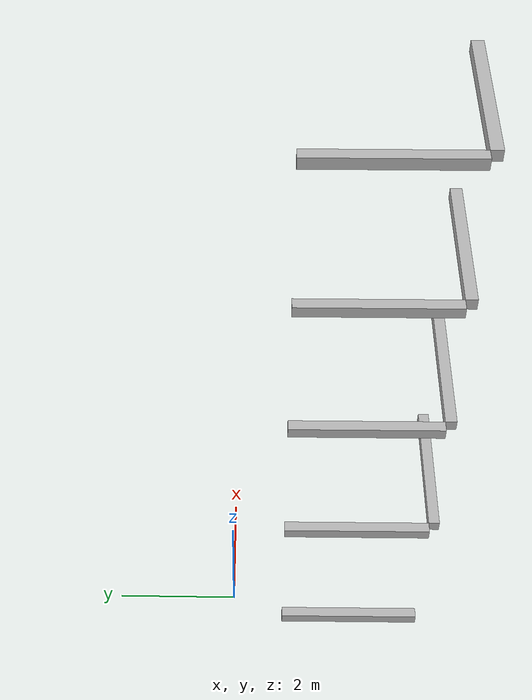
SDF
<sdf version="1.7">
 <world name="default">
  <model name="orthogonal_747_2.000.15_TS">
   <static>1</static>
   <link name="y_link_2_1_2">
    <inertial>
     <mass>1</mass>
     <inertia>
      <ixx>0.166667</ixx>
      <ixy>0</ixy>
      <ixz>0</ixz>
      <iyy>0.166667</iyy>
      <iyz>0</iyz>
      <izz>0.166667</izz>
     </inertia>
    </inertial>
    <pose>4.3 3.225 5.375 0 -0 0</pose>
    <visual name="visual_0">
     <laser_retro>1926</laser_retro>
     <geometry><box><size>0.15 1e-06 0.15</size></box></geometry>
     <material>
      <script><name>Gazebo/Grey</name><uri>file://media/materials/scripts/gazebo.material</uri></script>
      <shader type="pixel"><normal_map>__default__</normal_map></shader>
      <ambient>0.678 0.498 0.659 1</ambient>
      <diffuse>0.7 0.7 0.7 1</diffuse>
      <specular>0.01 0.01 0.01 1</specular>
      <emissive>0 0 0 1</emissive>
     </material>
     <pose>0 -1 0 0 -0 0</pose>
     <transparency>1</transparency>
    </visual>
    <visual name="visual_1">
     <laser_retro>1927</laser_retro>
     <geometry><box><size>0.15 1e-06 0.15</size></box></geometry>
     <material>
      <script><name>Gazebo/Grey</name><uri>file://media/materials/scripts/gazebo.material</uri></script>
      <shader type="pixel"><normal_map>__default__</normal_map></shader>
      <ambient>0.447 0.624 0.812 1</ambient>
      <diffuse>0.7 0.7 0.7 1</diffuse>
      <specular>0.01 0.01 0.01 1</specular>
      <emissive>0 0 0 1</emissive>
     </material>
     <pose>0 1 0 0 -0 0</pose>
     <transparency>1</transparency>
    </visual>
    <visual name="visual_2">
     <laser_retro>1928</laser_retro>
     <geometry><box><size>0.15 2 1e-06</size></box></geometry>
     <material>
      <script><name>Gazebo/Grey</name><uri>file://media/materials/scripts/gazebo.material</uri></script>
      <shader type="pixel"><normal_map>__default__</normal_map></shader>
      <ambient>0.988 0.686 0.243 1</ambient>
      <diffuse>0.7 0.7 0.7 1</diffuse>
      <specular>0.01 0.01 0.01 1</specular>
      <emissive>0 0 0 1</emissive>
     </material>
     <pose>0 0 -0.075 0 -0 0</pose>
     <transparency>1</transparency>
    </visual>
    <visual name="visual_3">
     <laser_retro>1929</laser_retro>
     <geometry><box><size>1e-06 2 0.15</size></box></geometry>
     <material>
      <script><name>Gazebo/Grey</name><uri>file://media/materials/scripts/gazebo.material</uri></script>
      <shader type="pixel"><normal_map>__default__</normal_map></shader>
      <ambient>0.988 0.914 0.31 1</ambient>
      <diffuse>0.7 0.7 0.7 1</diffuse>
      <specular>0.01 0.01 0.01 1</specular>
      <emissive>0 0 0 1</emissive>
     </material>
     <pose>0.075 0 0 0 -0 0</pose>
     <transparency>1</transparency>
    </visual>
    <visual name="visual_4">
     <laser_retro>1930</laser_retro>
     <geometry><box><size>0.15 2 1e-06</size></box></geometry>
     <material>
      <script><name>Gazebo/Grey</name><uri>file://media/materials/scripts/gazebo.material</uri></script>
      <shader type="pixel"><normal_map>__default__</normal_map></shader>
      <ambient>0.937 0.161 0.161 1</ambient>
      <diffuse>0.7 0.7 0.7 1</diffuse>
      <specular>0.01 0.01 0.01 1</specular>
      <emissive>0 0 0 1</emissive>
     </material>
     <pose>0 0 0.075 0 -0 0</pose>
     <transparency>1</transparency>
    </visual>
    <visual name="visual_5">
     <laser_retro>1931</laser_retro>
     <geometry><box><size>1e-06 2 0.15</size></box></geometry>
     <material>
      <script><name>Gazebo/Grey</name><uri>file://media/materials/scripts/gazebo.material</uri></script>
      <shader type="pixel"><normal_map>__default__</normal_map></shader>
      <ambient>0.541 0.886 0.204 1</ambient>
      <diffuse>0.7 0.7 0.7 1</diffuse>
      <specular>0.01 0.01 0.01 1</specular>
      <emissive>0 0 0 1</emissive>
     </material>
     <pose>-0.075 0 0 0 -0 0</pose>
     <transparency>1</transparency>
    </visual>
    <visual name="visual_texture">
     <geometry><box><size>0.149985 1.9998 0.149985</size></box></geometry>
     <material>
      <script>
       <uri>model://BASE_MODELS/simple_block_v2_textured/materials/scripts</uri>
       <uri>model://BASE_MODELS/simple_block_v2_textured/materials/textures</uri>
       <name>metal</name>
      </script>
     </material>
     <laser_retro>1932</laser_retro>
    </visual>
    <collision name="collision">
     <geometry><box><size>0.15 2 0.15</size></box></geometry>
     <surface>
      <friction>
       <ode><mu>1</mu><mu2>1</mu2><fdir1>0 0 0</fdir1><slip1>0</slip1><slip2>0</slip2></ode>
       <torsional>
        <coefficient>1</coefficient>
        <patch_radius>0</patch_radius>
        <surface_radius>0</surface_radius>
        <use_patch_radius>1</use_patch_radius>
        <ode><slip>0</slip></ode>
       </torsional>
      </friction>
      <bounce><restitution_coefficient>0</restitution_coefficient><threshold>1e+06</threshold></bounce>
      <contact>
       <collide_without_contact>0</collide_without_contact>
       <collide_without_contact_bitmask>1</collide_without_contact_bitmask>
       <collide_bitmask>1</collide_bitmask>
       <ode>
        <soft_cfm>0</soft_cfm>
        <soft_erp>0.2</soft_erp>
        <kp>1e+13</kp>
        <kd>1</kd>
        <max_vel>0.01</max_vel>
        <min_depth>0</min_depth>
       </ode>
       <bullet>
        <split_impulse>1</split_impulse>
        <split_impulse_penetration_threshold>-0.01</split_impulse_penetration_threshold>
        <soft_cfm>0</soft_cfm>
        <soft_erp>0.2</soft_erp>
        <kp>1e+13</kp>
        <kd>1</kd>
       </bullet>
      </contact>
     </surface>
    </collision>
   </link>
   <link name="x_link_3_1_2">
    <inertial>
     <mass>1</mass>
     <inertia>
      <ixx>0.166667</ixx>
      <ixy>0</ixy>
      <ixz>0</ixz>
      <iyy>0.166667</iyy>
      <iyz>0</iyz>
      <izz>0.166667</izz>
     </inertia>
    </inertial>
    <pose>5.375 2.15 7.525 0 -0 0</pose>
    <visual name="visual_0">
     <laser_retro>2822</laser_retro>
     <geometry><box><size>2 1e-06 0.15</size></box></geometry>
     <material>
      <script><name>Gazebo/Grey</name><uri>file://media/materials/scripts/gazebo.material</uri></script>
      <shader type="pixel"><normal_map>__default__</normal_map></shader>
      <ambient>0.678 0.498 0.659 1</ambient>
      <diffuse>0.7 0.7 0.7 1</diffuse>
      <specular>0.01 0.01 0.01 1</specular>
      <emissive>0 0 0 1</emissive>
     </material>
     <pose>0 -0.075 0 0 -0 0</pose>
     <transparency>1</transparency>
    </visual>
    <visual name="visual_1">
     <laser_retro>2823</laser_retro>
     <geometry><box><size>2 1e-06 0.15</size></box></geometry>
     <material>
      <script><name>Gazebo/Grey</name><uri>file://media/materials/scripts/gazebo.material</uri></script>
      <shader type="pixel"><normal_map>__default__</normal_map></shader>
      <ambient>0.447 0.624 0.812 1</ambient>
      <diffuse>0.7 0.7 0.7 1</diffuse>
      <specular>0.01 0.01 0.01 1</specular>
      <emissive>0 0 0 1</emissive>
     </material>
     <pose>0 0.075 0 0 -0 0</pose>
     <transparency>1</transparency>
    </visual>
    <visual name="visual_2">
     <laser_retro>2824</laser_retro>
     <geometry><box><size>2 0.15 1e-06</size></box></geometry>
     <material>
      <script><name>Gazebo/Grey</name><uri>file://media/materials/scripts/gazebo.material</uri></script>
      <shader type="pixel"><normal_map>__default__</normal_map></shader>
      <ambient>0.988 0.686 0.243 1</ambient>
      <diffuse>0.7 0.7 0.7 1</diffuse>
      <specular>0.01 0.01 0.01 1</specular>
      <emissive>0 0 0 1</emissive>
     </material>
     <pose>0 0 -0.075 0 -0 0</pose>
     <transparency>1</transparency>
    </visual>
    <visual name="visual_3">
     <laser_retro>2825</laser_retro>
     <geometry><box><size>1e-06 0.15 0.15</size></box></geometry>
     <material>
      <script><name>Gazebo/Grey</name><uri>file://media/materials/scripts/gazebo.material</uri></script>
      <shader type="pixel"><normal_map>__default__</normal_map></shader>
      <ambient>0.988 0.914 0.31 1</ambient>
      <diffuse>0.7 0.7 0.7 1</diffuse>
      <specular>0.01 0.01 0.01 1</specular>
      <emissive>0 0 0 1</emissive>
     </material>
     <pose>1 0 0 0 -0 0</pose>
     <transparency>1</transparency>
    </visual>
    <visual name="visual_4">
     <laser_retro>2826</laser_retro>
     <geometry><box><size>2 0.15 1e-06</size></box></geometry>
     <material>
      <script><name>Gazebo/Grey</name><uri>file://media/materials/scripts/gazebo.material</uri></script>
      <shader type="pixel"><normal_map>__default__</normal_map></shader>
      <ambient>0.937 0.161 0.161 1</ambient>
      <diffuse>0.7 0.7 0.7 1</diffuse>
      <specular>0.01 0.01 0.01 1</specular>
      <emissive>0 0 0 1</emissive>
     </material>
     <pose>0 0 0.075 0 -0 0</pose>
     <transparency>1</transparency>
    </visual>
    <visual name="visual_5">
     <laser_retro>2827</laser_retro>
     <geometry><box><size>1e-06 0.15 0.15</size></box></geometry>
     <material>
      <script><name>Gazebo/Grey</name><uri>file://media/materials/scripts/gazebo.material</uri></script>
      <shader type="pixel"><normal_map>__default__</normal_map></shader>
      <ambient>0.541 0.886 0.204 1</ambient>
      <diffuse>0.7 0.7 0.7 1</diffuse>
      <specular>0.01 0.01 0.01 1</specular>
      <emissive>0 0 0 1</emissive>
     </material>
     <pose>-1 0 0 0 -0 0</pose>
     <transparency>1</transparency>
    </visual>
    <visual name="visual_texture">
     <geometry><box><size>1.9998 0.149985 0.149985</size></box></geometry>
     <material>
      <script>
       <uri>model://BASE_MODELS/simple_block_v2_textured/materials/scripts</uri>
       <uri>model://BASE_MODELS/simple_block_v2_textured/materials/textures</uri>
       <name>metal</name>
      </script>
     </material>
     <laser_retro>2828</laser_retro>
    </visual>
    <collision name="collision">
     <geometry><box><size>2 0.15 0.15</size></box></geometry>
     <surface>
      <friction>
       <ode><mu>1</mu><mu2>1</mu2><fdir1>0 0 0</fdir1><slip1>0</slip1><slip2>0</slip2></ode>
       <torsional>
        <coefficient>1</coefficient>
        <patch_radius>0</patch_radius>
        <surface_radius>0</surface_radius>
        <use_patch_radius>1</use_patch_radius>
        <ode><slip>0</slip></ode>
       </torsional>
      </friction>
      <bounce><restitution_coefficient>0</restitution_coefficient><threshold>1e+06</threshold></bounce>
      <contact>
       <collide_without_contact>0</collide_without_contact>
       <collide_without_contact_bitmask>1</collide_without_contact_bitmask>
       <collide_bitmask>1</collide_bitmask>
       <ode>
        <soft_cfm>0</soft_cfm>
        <soft_erp>0.2</soft_erp>
        <kp>1e+13</kp>
        <kd>1</kd>
        <max_vel>0.01</max_vel>
        <min_depth>0</min_depth>
       </ode>
       <bullet>
        <split_impulse>1</split_impulse>
        <split_impulse_penetration_threshold>-0.01</split_impulse_penetration_threshold>
        <soft_cfm>0</soft_cfm>
        <soft_erp>0.2</soft_erp>
        <kp>1e+13</kp>
        <kd>1</kd>
       </bullet>
      </contact>
     </surface>
    </collision>
   </link>
   <link name="y_link_3_1_2">
    <inertial>
     <mass>1</mass>
     <inertia>
      <ixx>0.166667</ixx>
      <ixy>0</ixy>
      <ixz>0</ixz>
      <iyy>0.166667</iyy>
      <iyz>0</iyz>
      <izz>0.166667</izz>
     </inertia>
    </inertial>
    <pose>4.3 3.225 7.525 0 -0 0</pose>
    <visual name="visual_0">
     <laser_retro>2829</laser_retro>
     <geometry><box><size>0.15 1e-06 0.15</size></box></geometry>
     <material>
      <script><name>Gazebo/Grey</name><uri>file://media/materials/scripts/gazebo.material</uri></script>
      <shader type="pixel"><normal_map>__default__</normal_map></shader>
      <ambient>0.678 0.498 0.659 1</ambient>
      <diffuse>0.7 0.7 0.7 1</diffuse>
      <specular>0.01 0.01 0.01 1</specular>
      <emissive>0 0 0 1</emissive>
     </material>
     <pose>0 -1 0 0 -0 0</pose>
     <transparency>1</transparency>
    </visual>
    <visual name="visual_1">
     <laser_retro>2830</laser_retro>
     <geometry><box><size>0.15 1e-06 0.15</size></box></geometry>
     <material>
      <script><name>Gazebo/Grey</name><uri>file://media/materials/scripts/gazebo.material</uri></script>
      <shader type="pixel"><normal_map>__default__</normal_map></shader>
      <ambient>0.447 0.624 0.812 1</ambient>
      <diffuse>0.7 0.7 0.7 1</diffuse>
      <specular>0.01 0.01 0.01 1</specular>
      <emissive>0 0 0 1</emissive>
     </material>
     <pose>0 1 0 0 -0 0</pose>
     <transparency>1</transparency>
    </visual>
    <visual name="visual_2">
     <laser_retro>2831</laser_retro>
     <geometry><box><size>0.15 2 1e-06</size></box></geometry>
     <material>
      <script><name>Gazebo/Grey</name><uri>file://media/materials/scripts/gazebo.material</uri></script>
      <shader type="pixel"><normal_map>__default__</normal_map></shader>
      <ambient>0.988 0.686 0.243 1</ambient>
      <diffuse>0.7 0.7 0.7 1</diffuse>
      <specular>0.01 0.01 0.01 1</specular>
      <emissive>0 0 0 1</emissive>
     </material>
     <pose>0 0 -0.075 0 -0 0</pose>
     <transparency>1</transparency>
    </visual>
    <visual name="visual_3">
     <laser_retro>2832</laser_retro>
     <geometry><box><size>1e-06 2 0.15</size></box></geometry>
     <material>
      <script><name>Gazebo/Grey</name><uri>file://media/materials/scripts/gazebo.material</uri></script>
      <shader type="pixel"><normal_map>__default__</normal_map></shader>
      <ambient>0.988 0.914 0.31 1</ambient>
      <diffuse>0.7 0.7 0.7 1</diffuse>
      <specular>0.01 0.01 0.01 1</specular>
      <emissive>0 0 0 1</emissive>
     </material>
     <pose>0.075 0 0 0 -0 0</pose>
     <transparency>1</transparency>
    </visual>
    <visual name="visual_4">
     <laser_retro>2833</laser_retro>
     <geometry><box><size>0.15 2 1e-06</size></box></geometry>
     <material>
      <script><name>Gazebo/Grey</name><uri>file://media/materials/scripts/gazebo.material</uri></script>
      <shader type="pixel"><normal_map>__default__</normal_map></shader>
      <ambient>0.937 0.161 0.161 1</ambient>
      <diffuse>0.7 0.7 0.7 1</diffuse>
      <specular>0.01 0.01 0.01 1</specular>
      <emissive>0 0 0 1</emissive>
     </material>
     <pose>0 0 0.075 0 -0 0</pose>
     <transparency>1</transparency>
    </visual>
    <visual name="visual_5">
     <laser_retro>2834</laser_retro>
     <geometry><box><size>1e-06 2 0.15</size></box></geometry>
     <material>
      <script><name>Gazebo/Grey</name><uri>file://media/materials/scripts/gazebo.material</uri></script>
      <shader type="pixel"><normal_map>__default__</normal_map></shader>
      <ambient>0.541 0.886 0.204 1</ambient>
      <diffuse>0.7 0.7 0.7 1</diffuse>
      <specular>0.01 0.01 0.01 1</specular>
      <emissive>0 0 0 1</emissive>
     </material>
     <pose>-0.075 0 0 0 -0 0</pose>
     <transparency>1</transparency>
    </visual>
    <visual name="visual_texture">
     <geometry><box><size>0.149985 1.9998 0.149985</size></box></geometry>
     <material>
      <script>
       <uri>model://BASE_MODELS/simple_block_v2_textured/materials/scripts</uri>
       <uri>model://BASE_MODELS/simple_block_v2_textured/materials/textures</uri>
       <name>metal</name>
      </script>
     </material>
     <laser_retro>2835</laser_retro>
    </visual>
    <collision name="collision">
     <geometry><box><size>0.15 2 0.15</size></box></geometry>
     <surface>
      <friction>
       <ode><mu>1</mu><mu2>1</mu2><fdir1>0 0 0</fdir1><slip1>0</slip1><slip2>0</slip2></ode>
       <torsional>
        <coefficient>1</coefficient>
        <patch_radius>0</patch_radius>
        <surface_radius>0</surface_radius>
        <use_patch_radius>1</use_patch_radius>
        <ode><slip>0</slip></ode>
       </torsional>
      </friction>
      <bounce><restitution_coefficient>0</restitution_coefficient><threshold>1e+06</threshold></bounce>
      <contact>
       <collide_without_contact>0</collide_without_contact>
       <collide_without_contact_bitmask>1</collide_without_contact_bitmask>
       <collide_bitmask>1</collide_bitmask>
       <ode>
        <soft_cfm>0</soft_cfm>
        <soft_erp>0.2</soft_erp>
        <kp>1e+13</kp>
        <kd>1</kd>
        <max_vel>0.01</max_vel>
        <min_depth>0</min_depth>
       </ode>
       <bullet>
        <split_impulse>1</split_impulse>
        <split_impulse_penetration_threshold>-0.01</split_impulse_penetration_threshold>
        <soft_cfm>0</soft_cfm>
        <soft_erp>0.2</soft_erp>
        <kp>1e+13</kp>
        <kd>1</kd>
       </bullet>
      </contact>
     </surface>
    </collision>
   </link>
   <link name="x_link_4_1_2">
    <inertial>
     <mass>1</mass>
     <inertia>
      <ixx>0.166667</ixx>
      <ixy>0</ixy>
      <ixz>0</ixz>
      <iyy>0.166667</iyy>
      <iyz>0</iyz>
      <izz>0.166667</izz>
     </inertia>
    </inertial>
    <pose>5.375 2.15 9.675 0 -0 0</pose>
    <visual name="visual_0">
     <laser_retro>3725</laser_retro>
     <geometry><box><size>2 1e-06 0.15</size></box></geometry>
     <material>
      <script><name>Gazebo/Grey</name><uri>file://media/materials/scripts/gazebo.material</uri></script>
      <shader type="pixel"><normal_map>__default__</normal_map></shader>
      <ambient>0.678 0.498 0.659 1</ambient>
      <diffuse>0.7 0.7 0.7 1</diffuse>
      <specular>0.01 0.01 0.01 1</specular>
      <emissive>0 0 0 1</emissive>
     </material>
     <pose>0 -0.075 0 0 -0 0</pose>
     <transparency>1</transparency>
    </visual>
    <visual name="visual_1">
     <laser_retro>3726</laser_retro>
     <geometry><box><size>2 1e-06 0.15</size></box></geometry>
     <material>
      <script><name>Gazebo/Grey</name><uri>file://media/materials/scripts/gazebo.material</uri></script>
      <shader type="pixel"><normal_map>__default__</normal_map></shader>
      <ambient>0.447 0.624 0.812 1</ambient>
      <diffuse>0.7 0.7 0.7 1</diffuse>
      <specular>0.01 0.01 0.01 1</specular>
      <emissive>0 0 0 1</emissive>
     </material>
     <pose>0 0.075 0 0 -0 0</pose>
     <transparency>1</transparency>
    </visual>
    <visual name="visual_2">
     <laser_retro>3727</laser_retro>
     <geometry><box><size>2 0.15 1e-06</size></box></geometry>
     <material>
      <script><name>Gazebo/Grey</name><uri>file://media/materials/scripts/gazebo.material</uri></script>
      <shader type="pixel"><normal_map>__default__</normal_map></shader>
      <ambient>0.988 0.686 0.243 1</ambient>
      <diffuse>0.7 0.7 0.7 1</diffuse>
      <specular>0.01 0.01 0.01 1</specular>
      <emissive>0 0 0 1</emissive>
     </material>
     <pose>0 0 -0.075 0 -0 0</pose>
     <transparency>1</transparency>
    </visual>
    <visual name="visual_3">
     <laser_retro>3728</laser_retro>
     <geometry><box><size>1e-06 0.15 0.15</size></box></geometry>
     <material>
      <script><name>Gazebo/Grey</name><uri>file://media/materials/scripts/gazebo.material</uri></script>
      <shader type="pixel"><normal_map>__default__</normal_map></shader>
      <ambient>0.988 0.914 0.31 1</ambient>
      <diffuse>0.7 0.7 0.7 1</diffuse>
      <specular>0.01 0.01 0.01 1</specular>
      <emissive>0 0 0 1</emissive>
     </material>
     <pose>1 0 0 0 -0 0</pose>
     <transparency>1</transparency>
    </visual>
    <visual name="visual_4">
     <laser_retro>3729</laser_retro>
     <geometry><box><size>2 0.15 1e-06</size></box></geometry>
     <material>
      <script><name>Gazebo/Grey</name><uri>file://media/materials/scripts/gazebo.material</uri></script>
      <shader type="pixel"><normal_map>__default__</normal_map></shader>
      <ambient>0.937 0.161 0.161 1</ambient>
      <diffuse>0.7 0.7 0.7 1</diffuse>
      <specular>0.01 0.01 0.01 1</specular>
      <emissive>0 0 0 1</emissive>
     </material>
     <pose>0 0 0.075 0 -0 0</pose>
     <transparency>1</transparency>
    </visual>
    <visual name="visual_5">
     <laser_retro>3730</laser_retro>
     <geometry><box><size>1e-06 0.15 0.15</size></box></geometry>
     <material>
      <script><name>Gazebo/Grey</name><uri>file://media/materials/scripts/gazebo.material</uri></script>
      <shader type="pixel"><normal_map>__default__</normal_map></shader>
      <ambient>0.541 0.886 0.204 1</ambient>
      <diffuse>0.7 0.7 0.7 1</diffuse>
      <specular>0.01 0.01 0.01 1</specular>
      <emissive>0 0 0 1</emissive>
     </material>
     <pose>-1 0 0 0 -0 0</pose>
     <transparency>1</transparency>
    </visual>
    <visual name="visual_texture">
     <geometry><box><size>1.9998 0.149985 0.149985</size></box></geometry>
     <material>
      <script>
       <uri>model://BASE_MODELS/simple_block_v2_textured/materials/scripts</uri>
       <uri>model://BASE_MODELS/simple_block_v2_textured/materials/textures</uri>
       <name>metal</name>
      </script>
     </material>
     <laser_retro>3731</laser_retro>
    </visual>
    <collision name="collision">
     <geometry><box><size>2 0.15 0.15</size></box></geometry>
     <surface>
      <friction>
       <ode><mu>1</mu><mu2>1</mu2><fdir1>0 0 0</fdir1><slip1>0</slip1><slip2>0</slip2></ode>
       <torsional>
        <coefficient>1</coefficient>
        <patch_radius>0</patch_radius>
        <surface_radius>0</surface_radius>
        <use_patch_radius>1</use_patch_radius>
        <ode><slip>0</slip></ode>
       </torsional>
      </friction>
      <bounce><restitution_coefficient>0</restitution_coefficient><threshold>1e+06</threshold></bounce>
      <contact>
       <collide_without_contact>0</collide_without_contact>
       <collide_without_contact_bitmask>1</collide_without_contact_bitmask>
       <collide_bitmask>1</collide_bitmask>
       <ode>
        <soft_cfm>0</soft_cfm>
        <soft_erp>0.2</soft_erp>
        <kp>1e+13</kp>
        <kd>1</kd>
        <max_vel>0.01</max_vel>
        <min_depth>0</min_depth>
       </ode>
       <bullet>
        <split_impulse>1</split_impulse>
        <split_impulse_penetration_threshold>-0.01</split_impulse_penetration_threshold>
        <soft_cfm>0</soft_cfm>
        <soft_erp>0.2</soft_erp>
        <kp>1e+13</kp>
        <kd>1</kd>
       </bullet>
      </contact>
     </surface>
    </collision>
   </link>
   <link name="y_link_4_1_2">
    <inertial>
     <mass>1</mass>
     <inertia>
      <ixx>0.166667</ixx>
      <ixy>0</ixy>
      <ixz>0</ixz>
      <iyy>0.166667</iyy>
      <iyz>0</iyz>
      <izz>0.166667</izz>
     </inertia>
    </inertial>
    <pose>4.3 3.225 9.675 0 -0 0</pose>
    <visual name="visual_0">
     <laser_retro>3732</laser_retro>
     <geometry><box><size>0.15 1e-06 0.15</size></box></geometry>
     <material>
      <script><name>Gazebo/Grey</name><uri>file://media/materials/scripts/gazebo.material</uri></script>
      <shader type="pixel"><normal_map>__default__</normal_map></shader>
      <ambient>0.678 0.498 0.659 1</ambient>
      <diffuse>0.7 0.7 0.7 1</diffuse>
      <specular>0.01 0.01 0.01 1</specular>
      <emissive>0 0 0 1</emissive>
     </material>
     <pose>0 -1 0 0 -0 0</pose>
     <transparency>1</transparency>
    </visual>
    <visual name="visual_1">
     <laser_retro>3733</laser_retro>
     <geometry><box><size>0.15 1e-06 0.15</size></box></geometry>
     <material>
      <script><name>Gazebo/Grey</name><uri>file://media/materials/scripts/gazebo.material</uri></script>
      <shader type="pixel"><normal_map>__default__</normal_map></shader>
      <ambient>0.447 0.624 0.812 1</ambient>
      <diffuse>0.7 0.7 0.7 1</diffuse>
      <specular>0.01 0.01 0.01 1</specular>
      <emissive>0 0 0 1</emissive>
     </material>
     <pose>0 1 0 0 -0 0</pose>
     <transparency>1</transparency>
    </visual>
    <visual name="visual_2">
     <laser_retro>3734</laser_retro>
     <geometry><box><size>0.15 2 1e-06</size></box></geometry>
     <material>
      <script><name>Gazebo/Grey</name><uri>file://media/materials/scripts/gazebo.material</uri></script>
      <shader type="pixel"><normal_map>__default__</normal_map></shader>
      <ambient>0.988 0.686 0.243 1</ambient>
      <diffuse>0.7 0.7 0.7 1</diffuse>
      <specular>0.01 0.01 0.01 1</specular>
      <emissive>0 0 0 1</emissive>
     </material>
     <pose>0 0 -0.075 0 -0 0</pose>
     <transparency>1</transparency>
    </visual>
    <visual name="visual_3">
     <laser_retro>3735</laser_retro>
     <geometry><box><size>1e-06 2 0.15</size></box></geometry>
     <material>
      <script><name>Gazebo/Grey</name><uri>file://media/materials/scripts/gazebo.material</uri></script>
      <shader type="pixel"><normal_map>__default__</normal_map></shader>
      <ambient>0.988 0.914 0.31 1</ambient>
      <diffuse>0.7 0.7 0.7 1</diffuse>
      <specular>0.01 0.01 0.01 1</specular>
      <emissive>0 0 0 1</emissive>
     </material>
     <pose>0.075 0 0 0 -0 0</pose>
     <transparency>1</transparency>
    </visual>
    <visual name="visual_4">
     <laser_retro>3736</laser_retro>
     <geometry><box><size>0.15 2 1e-06</size></box></geometry>
     <material>
      <script><name>Gazebo/Grey</name><uri>file://media/materials/scripts/gazebo.material</uri></script>
      <shader type="pixel"><normal_map>__default__</normal_map></shader>
      <ambient>0.937 0.161 0.161 1</ambient>
      <diffuse>0.7 0.7 0.7 1</diffuse>
      <specular>0.01 0.01 0.01 1</specular>
      <emissive>0 0 0 1</emissive>
     </material>
     <pose>0 0 0.075 0 -0 0</pose>
     <transparency>1</transparency>
    </visual>
    <visual name="visual_5">
     <laser_retro>3737</laser_retro>
     <geometry><box><size>1e-06 2 0.15</size></box></geometry>
     <material>
      <script><name>Gazebo/Grey</name><uri>file://media/materials/scripts/gazebo.material</uri></script>
      <shader type="pixel"><normal_map>__default__</normal_map></shader>
      <ambient>0.541 0.886 0.204 1</ambient>
      <diffuse>0.7 0.7 0.7 1</diffuse>
      <specular>0.01 0.01 0.01 1</specular>
      <emissive>0 0 0 1</emissive>
     </material>
     <pose>-0.075 0 0 0 -0 0</pose>
     <transparency>1</transparency>
    </visual>
    <visual name="visual_texture">
     <geometry><box><size>0.149985 1.9998 0.149985</size></box></geometry>
     <material>
      <script>
       <uri>model://BASE_MODELS/simple_block_v2_textured/materials/scripts</uri>
       <uri>model://BASE_MODELS/simple_block_v2_textured/materials/textures</uri>
       <name>metal</name>
      </script>
     </material>
     <laser_retro>3738</laser_retro>
    </visual>
    <collision name="collision">
     <geometry><box><size>0.15 2 0.15</size></box></geometry>
     <surface>
      <friction>
       <ode><mu>1</mu><mu2>1</mu2><fdir1>0 0 0</fdir1><slip1>0</slip1><slip2>0</slip2></ode>
       <torsional>
        <coefficient>1</coefficient>
        <patch_radius>0</patch_radius>
        <surface_radius>0</surface_radius>
        <use_patch_radius>1</use_patch_radius>
        <ode><slip>0</slip></ode>
       </torsional>
      </friction>
      <bounce><restitution_coefficient>0</restitution_coefficient><threshold>1e+06</threshold></bounce>
      <contact>
       <collide_without_contact>0</collide_without_contact>
       <collide_without_contact_bitmask>1</collide_without_contact_bitmask>
       <collide_bitmask>1</collide_bitmask>
       <ode>
        <soft_cfm>0</soft_cfm>
        <soft_erp>0.2</soft_erp>
        <kp>1e+13</kp>
        <kd>1</kd>
        <max_vel>0.01</max_vel>
        <min_depth>0</min_depth>
       </ode>
       <bullet>
        <split_impulse>1</split_impulse>
        <split_impulse_penetration_threshold>-0.01</split_impulse_penetration_threshold>
        <soft_cfm>0</soft_cfm>
        <soft_erp>0.2</soft_erp>
        <kp>1e+13</kp>
        <kd>1</kd>
       </bullet>
      </contact>
     </surface>
    </collision>
   </link>
   <link name="x_link_5_1_2">
    <inertial>
     <mass>1</mass>
     <inertia>
      <ixx>0.166667</ixx>
      <ixy>0</ixy>
      <ixz>0</ixz>
      <iyy>0.166667</iyy>
      <iyz>0</iyz>
      <izz>0.166667</izz>
     </inertia>
    </inertial>
    <pose>5.375 2.15 11.825 0 -0 0</pose>
    <visual name="visual_0">
     <laser_retro>4628</laser_retro>
     <geometry><box><size>2 1e-06 0.15</size></box></geometry>
     <material>
      <script><name>Gazebo/Grey</name><uri>file://media/materials/scripts/gazebo.material</uri></script>
      <shader type="pixel"><normal_map>__default__</normal_map></shader>
      <ambient>0.678 0.498 0.659 1</ambient>
      <diffuse>0.7 0.7 0.7 1</diffuse>
      <specular>0.01 0.01 0.01 1</specular>
      <emissive>0 0 0 1</emissive>
     </material>
     <pose>0 -0.075 0 0 -0 0</pose>
     <transparency>1</transparency>
    </visual>
    <visual name="visual_1">
     <laser_retro>4629</laser_retro>
     <geometry><box><size>2 1e-06 0.15</size></box></geometry>
     <material>
      <script><name>Gazebo/Grey</name><uri>file://media/materials/scripts/gazebo.material</uri></script>
      <shader type="pixel"><normal_map>__default__</normal_map></shader>
      <ambient>0.447 0.624 0.812 1</ambient>
      <diffuse>0.7 0.7 0.7 1</diffuse>
      <specular>0.01 0.01 0.01 1</specular>
      <emissive>0 0 0 1</emissive>
     </material>
     <pose>0 0.075 0 0 -0 0</pose>
     <transparency>1</transparency>
    </visual>
    <visual name="visual_2">
     <laser_retro>4630</laser_retro>
     <geometry><box><size>2 0.15 1e-06</size></box></geometry>
     <material>
      <script><name>Gazebo/Grey</name><uri>file://media/materials/scripts/gazebo.material</uri></script>
      <shader type="pixel"><normal_map>__default__</normal_map></shader>
      <ambient>0.988 0.686 0.243 1</ambient>
      <diffuse>0.7 0.7 0.7 1</diffuse>
      <specular>0.01 0.01 0.01 1</specular>
      <emissive>0 0 0 1</emissive>
     </material>
     <pose>0 0 -0.075 0 -0 0</pose>
     <transparency>1</transparency>
    </visual>
    <visual name="visual_3">
     <laser_retro>4631</laser_retro>
     <geometry><box><size>1e-06 0.15 0.15</size></box></geometry>
     <material>
      <script><name>Gazebo/Grey</name><uri>file://media/materials/scripts/gazebo.material</uri></script>
      <shader type="pixel"><normal_map>__default__</normal_map></shader>
      <ambient>0.988 0.914 0.31 1</ambient>
      <diffuse>0.7 0.7 0.7 1</diffuse>
      <specular>0.01 0.01 0.01 1</specular>
      <emissive>0 0 0 1</emissive>
     </material>
     <pose>1 0 0 0 -0 0</pose>
     <transparency>1</transparency>
    </visual>
    <visual name="visual_4">
     <laser_retro>4632</laser_retro>
     <geometry><box><size>2 0.15 1e-06</size></box></geometry>
     <material>
      <script><name>Gazebo/Grey</name><uri>file://media/materials/scripts/gazebo.material</uri></script>
      <shader type="pixel"><normal_map>__default__</normal_map></shader>
      <ambient>0.937 0.161 0.161 1</ambient>
      <diffuse>0.7 0.7 0.7 1</diffuse>
      <specular>0.01 0.01 0.01 1</specular>
      <emissive>0 0 0 1</emissive>
     </material>
     <pose>0 0 0.075 0 -0 0</pose>
     <transparency>1</transparency>
    </visual>
    <visual name="visual_5">
     <laser_retro>4633</laser_retro>
     <geometry><box><size>1e-06 0.15 0.15</size></box></geometry>
     <material>
      <script><name>Gazebo/Grey</name><uri>file://media/materials/scripts/gazebo.material</uri></script>
      <shader type="pixel"><normal_map>__default__</normal_map></shader>
      <ambient>0.541 0.886 0.204 1</ambient>
      <diffuse>0.7 0.7 0.7 1</diffuse>
      <specular>0.01 0.01 0.01 1</specular>
      <emissive>0 0 0 1</emissive>
     </material>
     <pose>-1 0 0 0 -0 0</pose>
     <transparency>1</transparency>
    </visual>
    <visual name="visual_texture">
     <geometry><box><size>1.9998 0.149985 0.149985</size></box></geometry>
     <material>
      <script>
       <uri>model://BASE_MODELS/simple_block_v2_textured/materials/scripts</uri>
       <uri>model://BASE_MODELS/simple_block_v2_textured/materials/textures</uri>
       <name>metal</name>
      </script>
     </material>
     <laser_retro>4634</laser_retro>
    </visual>
    <collision name="collision">
     <geometry><box><size>2 0.15 0.15</size></box></geometry>
     <surface>
      <friction>
       <ode><mu>1</mu><mu2>1</mu2><fdir1>0 0 0</fdir1><slip1>0</slip1><slip2>0</slip2></ode>
       <torsional>
        <coefficient>1</coefficient>
        <patch_radius>0</patch_radius>
        <surface_radius>0</surface_radius>
        <use_patch_radius>1</use_patch_radius>
        <ode><slip>0</slip></ode>
       </torsional>
      </friction>
      <bounce><restitution_coefficient>0</restitution_coefficient><threshold>1e+06</threshold></bounce>
      <contact>
       <collide_without_contact>0</collide_without_contact>
       <collide_without_contact_bitmask>1</collide_without_contact_bitmask>
       <collide_bitmask>1</collide_bitmask>
       <ode>
        <soft_cfm>0</soft_cfm>
        <soft_erp>0.2</soft_erp>
        <kp>1e+13</kp>
        <kd>1</kd>
        <max_vel>0.01</max_vel>
        <min_depth>0</min_depth>
       </ode>
       <bullet>
        <split_impulse>1</split_impulse>
        <split_impulse_penetration_threshold>-0.01</split_impulse_penetration_threshold>
        <soft_cfm>0</soft_cfm>
        <soft_erp>0.2</soft_erp>
        <kp>1e+13</kp>
        <kd>1</kd>
       </bullet>
      </contact>
     </surface>
    </collision>
   </link>
   <link name="y_link_5_1_2">
    <inertial>
     <mass>1</mass>
     <inertia>
      <ixx>0.166667</ixx>
      <ixy>0</ixy>
      <ixz>0</ixz>
      <iyy>0.166667</iyy>
      <iyz>0</iyz>
      <izz>0.166667</izz>
     </inertia>
    </inertial>
    <pose>4.3 3.225 11.825 0 -0 0</pose>
    <visual name="visual_0">
     <laser_retro>4635</laser_retro>
     <geometry><box><size>0.15 1e-06 0.15</size></box></geometry>
     <material>
      <script><name>Gazebo/Grey</name><uri>file://media/materials/scripts/gazebo.material</uri></script>
      <shader type="pixel"><normal_map>__default__</normal_map></shader>
      <ambient>0.678 0.498 0.659 1</ambient>
      <diffuse>0.7 0.7 0.7 1</diffuse>
      <specular>0.01 0.01 0.01 1</specular>
      <emissive>0 0 0 1</emissive>
     </material>
     <pose>0 -1 0 0 -0 0</pose>
     <transparency>1</transparency>
    </visual>
    <visual name="visual_1">
     <laser_retro>4636</laser_retro>
     <geometry><box><size>0.15 1e-06 0.15</size></box></geometry>
     <material>
      <script><name>Gazebo/Grey</name><uri>file://media/materials/scripts/gazebo.material</uri></script>
      <shader type="pixel"><normal_map>__default__</normal_map></shader>
      <ambient>0.447 0.624 0.812 1</ambient>
      <diffuse>0.7 0.7 0.7 1</diffuse>
      <specular>0.01 0.01 0.01 1</specular>
      <emissive>0 0 0 1</emissive>
     </material>
     <pose>0 1 0 0 -0 0</pose>
     <transparency>1</transparency>
    </visual>
    <visual name="visual_2">
     <laser_retro>4637</laser_retro>
     <geometry><box><size>0.15 2 1e-06</size></box></geometry>
     <material>
      <script><name>Gazebo/Grey</name><uri>file://media/materials/scripts/gazebo.material</uri></script>
      <shader type="pixel"><normal_map>__default__</normal_map></shader>
      <ambient>0.988 0.686 0.243 1</ambient>
      <diffuse>0.7 0.7 0.7 1</diffuse>
      <specular>0.01 0.01 0.01 1</specular>
      <emissive>0 0 0 1</emissive>
     </material>
     <pose>0 0 -0.075 0 -0 0</pose>
     <transparency>1</transparency>
    </visual>
    <visual name="visual_3">
     <laser_retro>4638</laser_retro>
     <geometry><box><size>1e-06 2 0.15</size></box></geometry>
     <material>
      <script><name>Gazebo/Grey</name><uri>file://media/materials/scripts/gazebo.material</uri></script>
      <shader type="pixel"><normal_map>__default__</normal_map></shader>
      <ambient>0.988 0.914 0.31 1</ambient>
      <diffuse>0.7 0.7 0.7 1</diffuse>
      <specular>0.01 0.01 0.01 1</specular>
      <emissive>0 0 0 1</emissive>
     </material>
     <pose>0.075 0 0 0 -0 0</pose>
     <transparency>1</transparency>
    </visual>
    <visual name="visual_4">
     <laser_retro>4639</laser_retro>
     <geometry><box><size>0.15 2 1e-06</size></box></geometry>
     <material>
      <script><name>Gazebo/Grey</name><uri>file://media/materials/scripts/gazebo.material</uri></script>
      <shader type="pixel"><normal_map>__default__</normal_map></shader>
      <ambient>0.937 0.161 0.161 1</ambient>
      <diffuse>0.7 0.7 0.7 1</diffuse>
      <specular>0.01 0.01 0.01 1</specular>
      <emissive>0 0 0 1</emissive>
     </material>
     <pose>0 0 0.075 0 -0 0</pose>
     <transparency>1</transparency>
    </visual>
    <visual name="visual_5">
     <laser_retro>4640</laser_retro>
     <geometry><box><size>1e-06 2 0.15</size></box></geometry>
     <material>
      <script><name>Gazebo/Grey</name><uri>file://media/materials/scripts/gazebo.material</uri></script>
      <shader type="pixel"><normal_map>__default__</normal_map></shader>
      <ambient>0.541 0.886 0.204 1</ambient>
      <diffuse>0.7 0.7 0.7 1</diffuse>
      <specular>0.01 0.01 0.01 1</specular>
      <emissive>0 0 0 1</emissive>
     </material>
     <pose>-0.075 0 0 0 -0 0</pose>
     <transparency>1</transparency>
    </visual>
    <visual name="visual_texture">
     <geometry><box><size>0.149985 1.9998 0.149985</size></box></geometry>
     <material>
      <script>
       <uri>model://BASE_MODELS/simple_block_v2_textured/materials/scripts</uri>
       <uri>model://BASE_MODELS/simple_block_v2_textured/materials/textures</uri>
       <name>metal</name>
      </script>
     </material>
     <laser_retro>4641</laser_retro>
    </visual>
    <collision name="collision">
     <geometry><box><size>0.15 2 0.15</size></box></geometry>
     <surface>
      <friction>
       <ode><mu>1</mu><mu2>1</mu2><fdir1>0 0 0</fdir1><slip1>0</slip1><slip2>0</slip2></ode>
       <torsional>
        <coefficient>1</coefficient>
        <patch_radius>0</patch_radius>
        <surface_radius>0</surface_radius>
        <use_patch_radius>1</use_patch_radius>
        <ode><slip>0</slip></ode>
       </torsional>
      </friction>
      <bounce><restitution_coefficient>0</restitution_coefficient><threshold>1e+06</threshold></bounce>
      <contact>
       <collide_without_contact>0</collide_without_contact>
       <collide_without_contact_bitmask>1</collide_without_contact_bitmask>
       <collide_bitmask>1</collide_bitmask>
       <ode>
        <soft_cfm>0</soft_cfm>
        <soft_erp>0.2</soft_erp>
        <kp>1e+13</kp>
        <kd>1</kd>
        <max_vel>0.01</max_vel>
        <min_depth>0</min_depth>
       </ode>
       <bullet>
        <split_impulse>1</split_impulse>
        <split_impulse_penetration_threshold>-0.01</split_impulse_penetration_threshold>
        <soft_cfm>0</soft_cfm>
        <soft_erp>0.2</soft_erp>
        <kp>1e+13</kp>
        <kd>1</kd>
       </bullet>
      </contact>
     </surface>
    </collision>
   </link>
   <link name="x_link_6_1_2">
    <inertial>
     <mass>1</mass>
     <inertia>
      <ixx>0.166667</ixx>
      <ixy>0</ixy>
      <ixz>0</ixz>
      <iyy>0.166667</iyy>
      <iyz>0</iyz>
      <izz>0.166667</izz>
     </inertia>
    </inertial>
    <pose>5.375 2.15 13.975 0 -0 0</pose>
    <visual name="visual_0">
     <laser_retro>5538</laser_retro>
     <geometry><box><size>2 1e-06 0.15</size></box></geometry>
     <material>
      <script><name>Gazebo/Grey</name><uri>file://media/materials/scripts/gazebo.material</uri></script>
      <shader type="pixel"><normal_map>__default__</normal_map></shader>
      <ambient>0.678 0.498 0.659 1</ambient>
      <diffuse>0.7 0.7 0.7 1</diffuse>
      <specular>0.01 0.01 0.01 1</specular>
      <emissive>0 0 0 1</emissive>
     </material>
     <pose>0 -0.075 0 0 -0 0</pose>
     <transparency>1</transparency>
    </visual>
    <visual name="visual_1">
     <laser_retro>5539</laser_retro>
     <geometry><box><size>2 1e-06 0.15</size></box></geometry>
     <material>
      <script><name>Gazebo/Grey</name><uri>file://media/materials/scripts/gazebo.material</uri></script>
      <shader type="pixel"><normal_map>__default__</normal_map></shader>
      <ambient>0.447 0.624 0.812 1</ambient>
      <diffuse>0.7 0.7 0.7 1</diffuse>
      <specular>0.01 0.01 0.01 1</specular>
      <emissive>0 0 0 1</emissive>
     </material>
     <pose>0 0.075 0 0 -0 0</pose>
     <transparency>1</transparency>
    </visual>
    <visual name="visual_2">
     <laser_retro>5540</laser_retro>
     <geometry><box><size>2 0.15 1e-06</size></box></geometry>
     <material>
      <script><name>Gazebo/Grey</name><uri>file://media/materials/scripts/gazebo.material</uri></script>
      <shader type="pixel"><normal_map>__default__</normal_map></shader>
      <ambient>0.988 0.686 0.243 1</ambient>
      <diffuse>0.7 0.7 0.7 1</diffuse>
      <specular>0.01 0.01 0.01 1</specular>
      <emissive>0 0 0 1</emissive>
     </material>
     <pose>0 0 -0.075 0 -0 0</pose>
     <transparency>1</transparency>
    </visual>
    <visual name="visual_3">
     <laser_retro>5541</laser_retro>
     <geometry><box><size>1e-06 0.15 0.15</size></box></geometry>
     <material>
      <script><name>Gazebo/Grey</name><uri>file://media/materials/scripts/gazebo.material</uri></script>
      <shader type="pixel"><normal_map>__default__</normal_map></shader>
      <ambient>0.988 0.914 0.31 1</ambient>
      <diffuse>0.7 0.7 0.7 1</diffuse>
      <specular>0.01 0.01 0.01 1</specular>
      <emissive>0 0 0 1</emissive>
     </material>
     <pose>1 0 0 0 -0 0</pose>
     <transparency>1</transparency>
    </visual>
    <visual name="visual_4">
     <laser_retro>5542</laser_retro>
     <geometry><box><size>2 0.15 1e-06</size></box></geometry>
     <material>
      <script><name>Gazebo/Grey</name><uri>file://media/materials/scripts/gazebo.material</uri></script>
      <shader type="pixel"><normal_map>__default__</normal_map></shader>
      <ambient>0.937 0.161 0.161 1</ambient>
      <diffuse>0.7 0.7 0.7 1</diffuse>
      <specular>0.01 0.01 0.01 1</specular>
      <emissive>0 0 0 1</emissive>
     </material>
     <pose>0 0 0.075 0 -0 0</pose>
     <transparency>1</transparency>
    </visual>
    <visual name="visual_5">
     <laser_retro>5543</laser_retro>
     <geometry><box><size>1e-06 0.15 0.15</size></box></geometry>
     <material>
      <script><name>Gazebo/Grey</name><uri>file://media/materials/scripts/gazebo.material</uri></script>
      <shader type="pixel"><normal_map>__default__</normal_map></shader>
      <ambient>0.541 0.886 0.204 1</ambient>
      <diffuse>0.7 0.7 0.7 1</diffuse>
      <specular>0.01 0.01 0.01 1</specular>
      <emissive>0 0 0 1</emissive>
     </material>
     <pose>-1 0 0 0 -0 0</pose>
     <transparency>1</transparency>
    </visual>
    <visual name="visual_texture">
     <geometry><box><size>1.9998 0.149985 0.149985</size></box></geometry>
     <material>
      <script>
       <uri>model://BASE_MODELS/simple_block_v2_textured/materials/scripts</uri>
       <uri>model://BASE_MODELS/simple_block_v2_textured/materials/textures</uri>
       <name>metal</name>
      </script>
     </material>
     <laser_retro>5544</laser_retro>
    </visual>
    <collision name="collision">
     <geometry><box><size>2 0.15 0.15</size></box></geometry>
     <surface>
      <friction>
       <ode><mu>1</mu><mu2>1</mu2><fdir1>0 0 0</fdir1><slip1>0</slip1><slip2>0</slip2></ode>
       <torsional>
        <coefficient>1</coefficient>
        <patch_radius>0</patch_radius>
        <surface_radius>0</surface_radius>
        <use_patch_radius>1</use_patch_radius>
        <ode><slip>0</slip></ode>
       </torsional>
      </friction>
      <bounce><restitution_coefficient>0</restitution_coefficient><threshold>1e+06</threshold></bounce>
      <contact>
       <collide_without_contact>0</collide_without_contact>
       <collide_without_contact_bitmask>1</collide_without_contact_bitmask>
       <collide_bitmask>1</collide_bitmask>
       <ode>
        <soft_cfm>0</soft_cfm>
        <soft_erp>0.2</soft_erp>
        <kp>1e+13</kp>
        <kd>1</kd>
        <max_vel>0.01</max_vel>
        <min_depth>0</min_depth>
       </ode>
       <bullet>
        <split_impulse>1</split_impulse>
        <split_impulse_penetration_threshold>-0.01</split_impulse_penetration_threshold>
        <soft_cfm>0</soft_cfm>
        <soft_erp>0.2</soft_erp>
        <kp>1e+13</kp>
        <kd>1</kd>
       </bullet>
      </contact>
     </surface>
    </collision>
   </link>
   <link name="y_link_6_1_2">
    <inertial>
     <mass>1</mass>
     <inertia>
      <ixx>0.166667</ixx>
      <ixy>0</ixy>
      <ixz>0</ixz>
      <iyy>0.166667</iyy>
      <iyz>0</iyz>
      <izz>0.166667</izz>
     </inertia>
    </inertial>
    <pose>4.3 3.225 13.975 0 -0 0</pose>
    <visual name="visual_0">
     <laser_retro>5545</laser_retro>
     <geometry><box><size>0.15 1e-06 0.15</size></box></geometry>
     <material>
      <script><name>Gazebo/Grey</name><uri>file://media/materials/scripts/gazebo.material</uri></script>
      <shader type="pixel"><normal_map>__default__</normal_map></shader>
      <ambient>0.678 0.498 0.659 1</ambient>
      <diffuse>0.7 0.7 0.7 1</diffuse>
      <specular>0.01 0.01 0.01 1</specular>
      <emissive>0 0 0 1</emissive>
     </material>
     <pose>0 -1 0 0 -0 0</pose>
     <transparency>1</transparency>
    </visual>
    <visual name="visual_1">
     <laser_retro>5546</laser_retro>
     <geometry><box><size>0.15 1e-06 0.15</size></box></geometry>
     <material>
      <script><name>Gazebo/Grey</name><uri>file://media/materials/scripts/gazebo.material</uri></script>
      <shader type="pixel"><normal_map>__default__</normal_map></shader>
      <ambient>0.447 0.624 0.812 1</ambient>
      <diffuse>0.7 0.7 0.7 1</diffuse>
      <specular>0.01 0.01 0.01 1</specular>
      <emissive>0 0 0 1</emissive>
     </material>
     <pose>0 1 0 0 -0 0</pose>
     <transparency>1</transparency>
    </visual>
    <visual name="visual_2">
     <laser_retro>5547</laser_retro>
     <geometry><box><size>0.15 2 1e-06</size></box></geometry>
     <material>
      <script><name>Gazebo/Grey</name><uri>file://media/materials/scripts/gazebo.material</uri></script>
      <shader type="pixel"><normal_map>__default__</normal_map></shader>
      <ambient>0.988 0.686 0.243 1</ambient>
      <diffuse>0.7 0.7 0.7 1</diffuse>
      <specular>0.01 0.01 0.01 1</specular>
      <emissive>0 0 0 1</emissive>
     </material>
     <pose>0 0 -0.075 0 -0 0</pose>
     <transparency>1</transparency>
    </visual>
    <visual name="visual_3">
     <laser_retro>5548</laser_retro>
     <geometry><box><size>1e-06 2 0.15</size></box></geometry>
     <material>
      <script><name>Gazebo/Grey</name><uri>file://media/materials/scripts/gazebo.material</uri></script>
      <shader type="pixel"><normal_map>__default__</normal_map></shader>
      <ambient>0.988 0.914 0.31 1</ambient>
      <diffuse>0.7 0.7 0.7 1</diffuse>
      <specular>0.01 0.01 0.01 1</specular>
      <emissive>0 0 0 1</emissive>
     </material>
     <pose>0.075 0 0 0 -0 0</pose>
     <transparency>1</transparency>
    </visual>
    <visual name="visual_4">
     <laser_retro>5549</laser_retro>
     <geometry><box><size>0.15 2 1e-06</size></box></geometry>
     <material>
      <script><name>Gazebo/Grey</name><uri>file://media/materials/scripts/gazebo.material</uri></script>
      <shader type="pixel"><normal_map>__default__</normal_map></shader>
      <ambient>0.937 0.161 0.161 1</ambient>
      <diffuse>0.7 0.7 0.7 1</diffuse>
      <specular>0.01 0.01 0.01 1</specular>
      <emissive>0 0 0 1</emissive>
     </material>
     <pose>0 0 0.075 0 -0 0</pose>
     <transparency>1</transparency>
    </visual>
    <visual name="visual_5">
     <laser_retro>5550</laser_retro>
     <geometry><box><size>1e-06 2 0.15</size></box></geometry>
     <material>
      <script><name>Gazebo/Grey</name><uri>file://media/materials/scripts/gazebo.material</uri></script>
      <shader type="pixel"><normal_map>__default__</normal_map></shader>
      <ambient>0.541 0.886 0.204 1</ambient>
      <diffuse>0.7 0.7 0.7 1</diffuse>
      <specular>0.01 0.01 0.01 1</specular>
      <emissive>0 0 0 1</emissive>
     </material>
     <pose>-0.075 0 0 0 -0 0</pose>
     <transparency>1</transparency>
    </visual>
    <visual name="visual_texture">
     <geometry><box><size>0.149985 1.9998 0.149985</size></box></geometry>
     <material>
      <script>
       <uri>model://BASE_MODELS/simple_block_v2_textured/materials/scripts</uri>
       <uri>model://BASE_MODELS/simple_block_v2_textured/materials/textures</uri>
       <name>metal</name>
      </script>
     </material>
     <laser_retro>5551</laser_retro>
    </visual>
    <collision name="collision">
     <geometry><box><size>0.15 2 0.15</size></box></geometry>
     <surface>
      <friction>
       <ode><mu>1</mu><mu2>1</mu2><fdir1>0 0 0</fdir1><slip1>0</slip1><slip2>0</slip2></ode>
       <torsional>
        <coefficient>1</coefficient>
        <patch_radius>0</patch_radius>
        <surface_radius>0</surface_radius>
        <use_patch_radius>1</use_patch_radius>
        <ode><slip>0</slip></ode>
       </torsional>
      </friction>
      <bounce><restitution_coefficient>0</restitution_coefficient><threshold>1e+06</threshold></bounce>
      <contact>
       <collide_without_contact>0</collide_without_contact>
       <collide_without_contact_bitmask>1</collide_without_contact_bitmask>
       <collide_bitmask>1</collide_bitmask>
       <ode>
        <soft_cfm>0</soft_cfm>
        <soft_erp>0.2</soft_erp>
        <kp>1e+13</kp>
        <kd>1</kd>
        <max_vel>0.01</max_vel>
        <min_depth>0</min_depth>
       </ode>
       <bullet>
        <split_impulse>1</split_impulse>
        <split_impulse_penetration_threshold>-0.01</split_impulse_penetration_threshold>
        <soft_cfm>0</soft_cfm>
        <soft_erp>0.2</soft_erp>
        <kp>1e+13</kp>
        <kd>1</kd>
       </bullet>
      </contact>
     </surface>
    </collision>
   </link>
   <pose>-6.47624 -5 -2.5 0 -0 0</pose>
  </model>
 </world>
</sdf>
